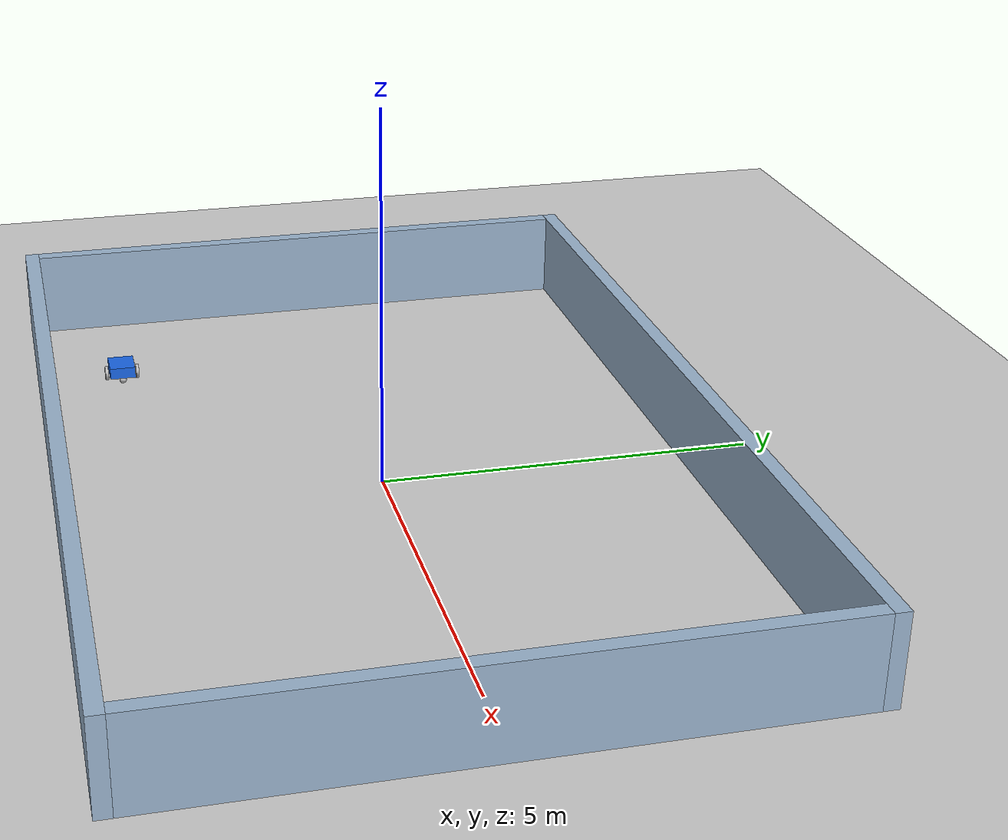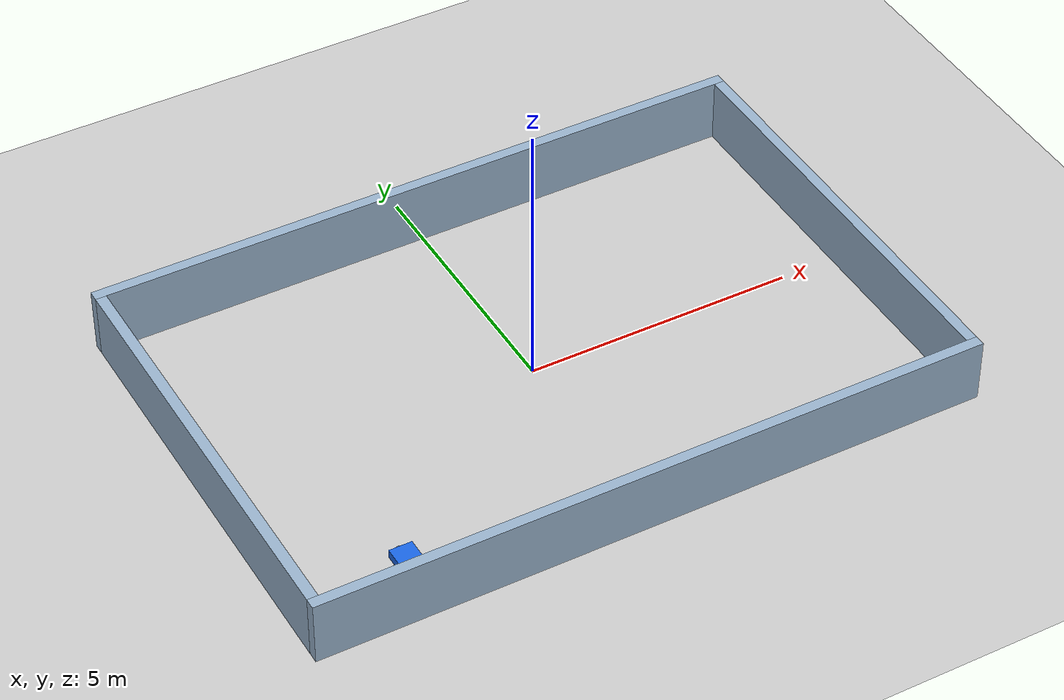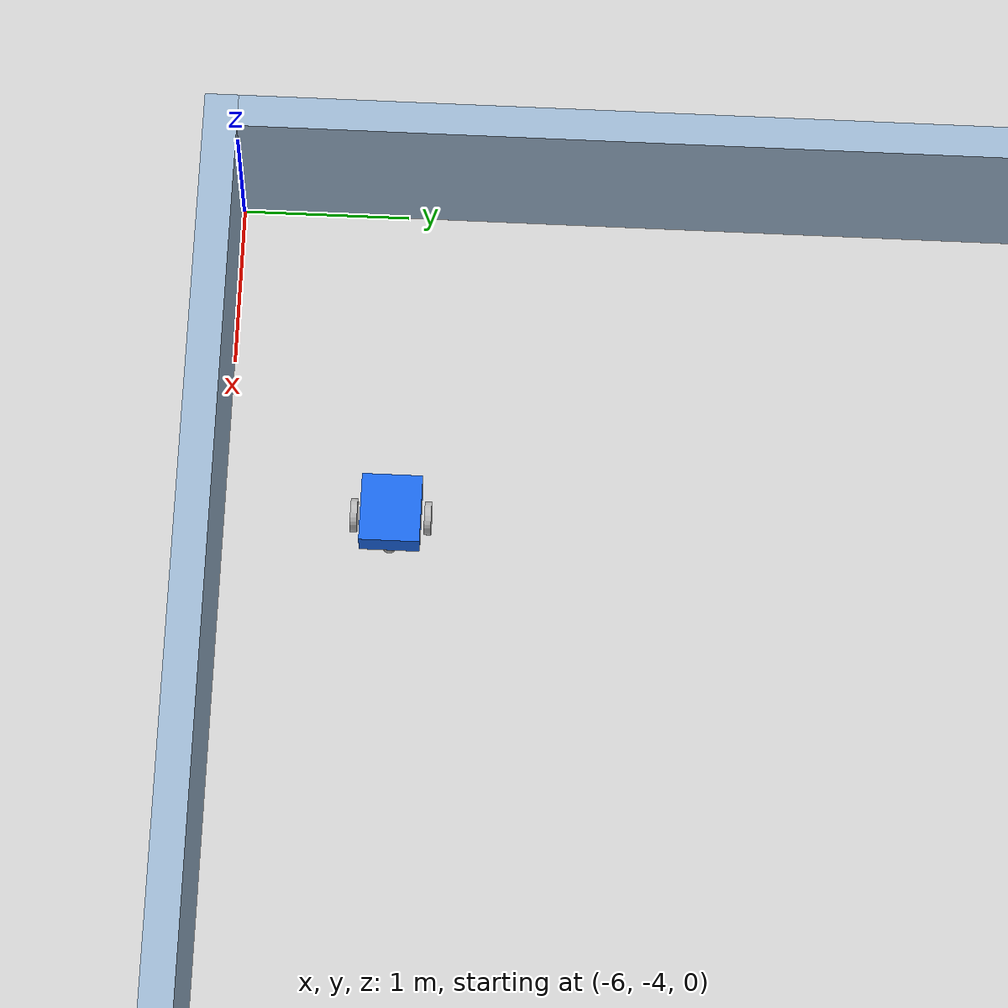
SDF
<?xml version="1.0"?><sdf version="1.8"><world name="wall_arena">
    <physics name="physics" type="ignored"><max_step_size>0.001</max_step_size><real_time_factor>1</real_time_factor></physics>
    <plugin filename="ignition-gazebo-physics-system" name="ignition::gazebo::systems::Physics"/>
    <plugin filename="ignition-gazebo-user-commands-system" name="ignition::gazebo::systems::UserCommands"/>
    <plugin filename="ignition-gazebo-scene-broadcaster-system" name="ignition::gazebo::systems::SceneBroadcaster"/>
    <plugin filename="ignition-gazebo-sensors-system" name="ignition::gazebo::systems::Sensors"><render_engine>ogre2</render_engine></plugin>
    <light name="sun" type="directional"><pose>0 0 10 0 0 0</pose><diffuse>.8 .8 .8 1</diffuse><direction>-.5 .1 -.9</direction></light>
    <model name="ground"><static>true</static><link name="ground"><collision name="c"><geometry><plane><normal>0 0 1</normal><size>100 100</size></plane></geometry></collision>
    <visual name="v"><geometry><plane><normal>0 0 1</normal><size>100 100</size></plane></geometry></visual></link></model>
    <model name="south"><static>true</static><pose>0 -4.1 0.6 0 0 0</pose>
    <link name="link"><collision name="collision"><geometry><box><size>12.4 0.2 1.2</size></box></geometry></collision>
    <visual name="visual"><geometry><box><size>12.4 0.2 1.2</size></box></geometry>
    <material><ambient>0.6 0.7 0.8 1</ambient></material></visual></link></model><model name="north"><static>true</static><pose>0 4.1 0.6 0 0 0</pose>
    <link name="link"><collision name="collision"><geometry><box><size>12.4 0.2 1.2</size></box></geometry></collision>
    <visual name="visual"><geometry><box><size>12.4 0.2 1.2</size></box></geometry>
    <material><ambient>0.6 0.7 0.8 1</ambient></material></visual></link></model><model name="east"><static>true</static><pose>6.1 0 0.6 0 0 0</pose>
    <link name="link"><collision name="collision"><geometry><box><size>0.2 8.0 1.2</size></box></geometry></collision>
    <visual name="visual"><geometry><box><size>0.2 8.0 1.2</size></box></geometry>
    <material><ambient>0.6 0.7 0.8 1</ambient></material></visual></link></model><model name="west"><static>true</static><pose>-6.1 0 0.6 0 0 0</pose>
    <link name="link"><collision name="collision"><geometry><box><size>0.2 8.0 1.2</size></box></geometry></collision>
    <visual name="visual"><geometry><box><size>0.2 8.0 1.2</size></box></geometry>
    <material><ambient>0.6 0.7 0.8 1</ambient></material></visual></link></model><model name="robot"><pose>-4.0 -3.0 0 0 0 0</pose>
    <link name="base"><pose>0 0 .17 0 0 0</pose><inertial><mass>3</mass><inertia><ixx>.04</ixx><iyy>.05</iyy><izz>.07</izz></inertia></inertial>
    <collision name="c"><geometry><box><size>.42 .36 .16</size></box></geometry></collision>
    <visual name="v"><geometry><box><size>.42 .36 .16</size></box></geometry><material><ambient>.1 .4 .9 1</ambient></material></visual>
    <sensor name="lidar" type="gpu_lidar"><pose>0 0 .15 0 0 0</pose><topic>/scan</topic><update_rate>20.0</update_rate>
    <lidar><scan><horizontal><samples>720</samples><resolution>1</resolution><min_angle>-3.14159265359</min_angle><max_angle>3.14159265359</max_angle></horizontal></scan>
    <range><min>.05</min><max>20</max><resolution>.001</resolution></range>
    <noise><type>gaussian</type><mean>0</mean><stddev>0.0</stddev></noise></lidar></sensor></link>
    <link name="left"><pose>0 0.22 0.10 -1.57079632679 0 0</pose>
        <inertial><mass>0.3</mass><inertia><ixx>.001</ixx><iyy>.001</iyy><izz>.0015</izz></inertia></inertial>
        <collision name="c"><geometry><cylinder><radius>.1</radius><length>.04</length></cylinder></geometry></collision>
        <visual name="v"><geometry><cylinder><radius>.1</radius><length>.04</length></cylinder></geometry></visual></link>
        <joint name="left_joint" type="revolute"><parent>base</parent><child>left</child>
        <axis><xyz expressed_in="__model__">0 1 0</xyz><limit><lower>-1e16</lower><upper>1e16</upper></limit></axis></joint><link name="right"><pose>0 -0.22 0.10 -1.57079632679 0 0</pose>
        <inertial><mass>0.3</mass><inertia><ixx>.001</ixx><iyy>.001</iyy><izz>.0015</izz></inertia></inertial>
        <collision name="c"><geometry><cylinder><radius>.1</radius><length>.04</length></cylinder></geometry></collision>
        <visual name="v"><geometry><cylinder><radius>.1</radius><length>.04</length></cylinder></geometry></visual></link>
        <joint name="right_joint" type="revolute"><parent>base</parent><child>right</child>
        <axis><xyz expressed_in="__model__">0 1 0</xyz><limit><lower>-1e16</lower><upper>1e16</upper></limit></axis></joint><link name="caster"><pose>-.16 0 .05 0 0 0</pose>
    <inertial><mass>.1</mass><inertia><ixx>.0001</ixx><iyy>.0001</iyy><izz>.0001</izz></inertia></inertial>
    <collision name="c"><geometry><sphere><radius>.05</radius></sphere></geometry><surface><friction><ode><mu>0</mu><mu2>0</mu2></ode></friction></surface></collision>
    <visual name="v"><geometry><sphere><radius>.05</radius></sphere></geometry></visual></link>
    <joint name="caster_joint" type="fixed"><parent>base</parent><child>caster</child></joint><link name="front_caster"><pose>.16 0 .05 0 0 0</pose>
    <inertial><mass>.1</mass><inertia><ixx>.0001</ixx><iyy>.0001</iyy><izz>.0001</izz></inertia></inertial>
    <collision name="c"><geometry><sphere><radius>.05</radius></sphere></geometry><surface><friction><ode><mu>0</mu><mu2>0</mu2></ode></friction></surface></collision>
    <visual name="v"><geometry><sphere><radius>.05</radius></sphere></geometry></visual></link>
    <joint name="front_caster_joint" type="fixed"><parent>base</parent><child>front_caster</child></joint>
    <plugin filename="ignition-gazebo-diff-drive-system" name="ignition::gazebo::systems::DiffDrive">
    <left_joint>left_joint</left_joint><right_joint>right_joint</right_joint><wheel_separation>.44</wheel_separation><wheel_radius>.1</wheel_radius>
    <topic>/cmd_vel</topic><odom_topic>/wheel_odom</odom_topic><odom_publish_frequency>50</odom_publish_frequency>
    <max_linear_acceleration>1</max_linear_acceleration><min_linear_acceleration>-1</min_linear_acceleration>
    <max_angular_acceleration>3</max_angular_acceleration><min_angular_acceleration>-3</min_angular_acceleration></plugin>
    <plugin filename="ignition-gazebo-odometry-publisher-system" name="ignition::gazebo::systems::OdometryPublisher">
    <dimensions>2</dimensions><odom_publish_frequency>50</odom_publish_frequency><odom_topic>/ground_truth</odom_topic></plugin>
    </model></world></sdf>
